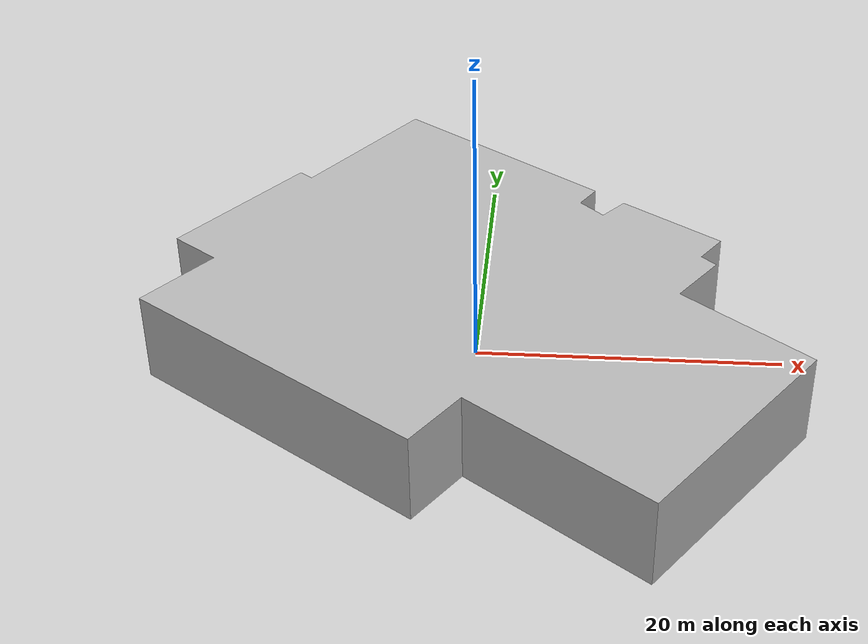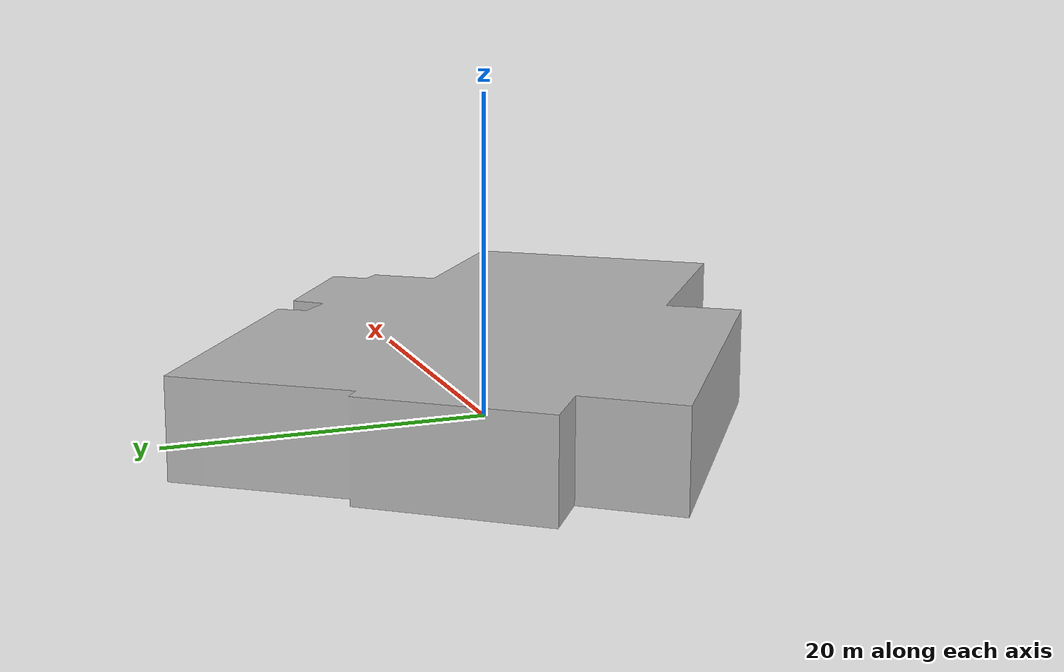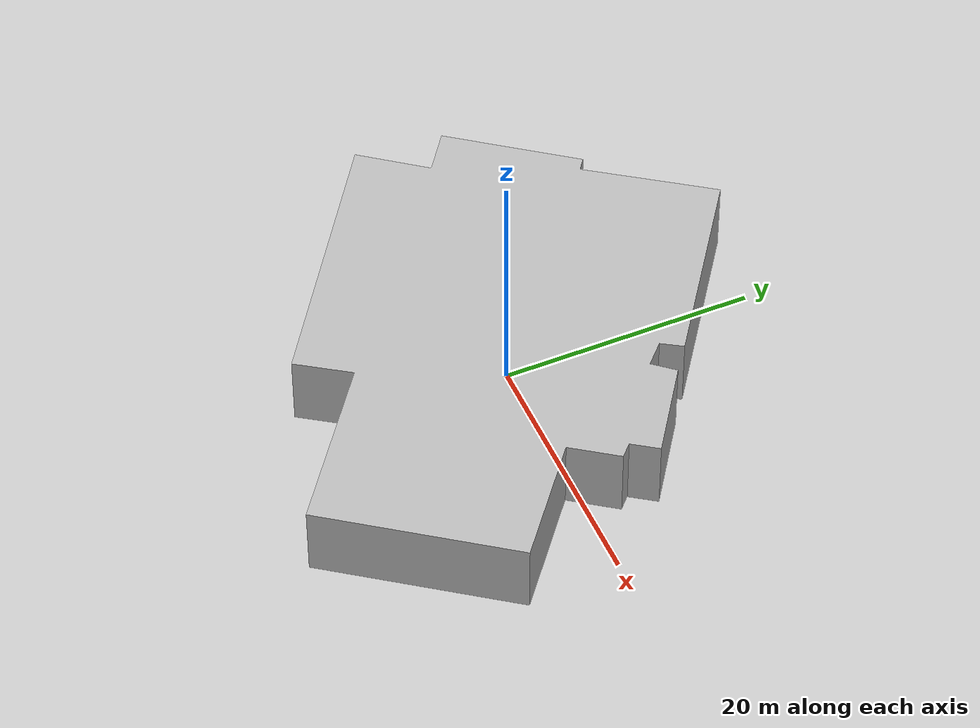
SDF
<?xml version="1.0" ?>
<sdf version="1.7">
  <model name="building_6671_assumed_a_cruz_vermelha_portuguesa">
    <static>true</static>
    <link name="building_link">
      <visual name="building_visual">
        <geometry>
          <mesh>
            <uri>model://building_6671_assumed_a_cruz_vermelha_portuguesa/meshes/construction_6671_assumed_A_Cruz_vermelha_portuguesa_h6m.obj</uri>
          </mesh>
        </geometry>
      </visual>
    <collision name="building_collision">
      <geometry>
        <mesh>
          <uri>model://building_6671_assumed_a_cruz_vermelha_portuguesa/meshes/construction_6671_assumed_A_Cruz_vermelha_portuguesa_h6m.obj</uri>
        </mesh>
      </geometry>
    </collision>
    </link>
  </model>
</sdf>
